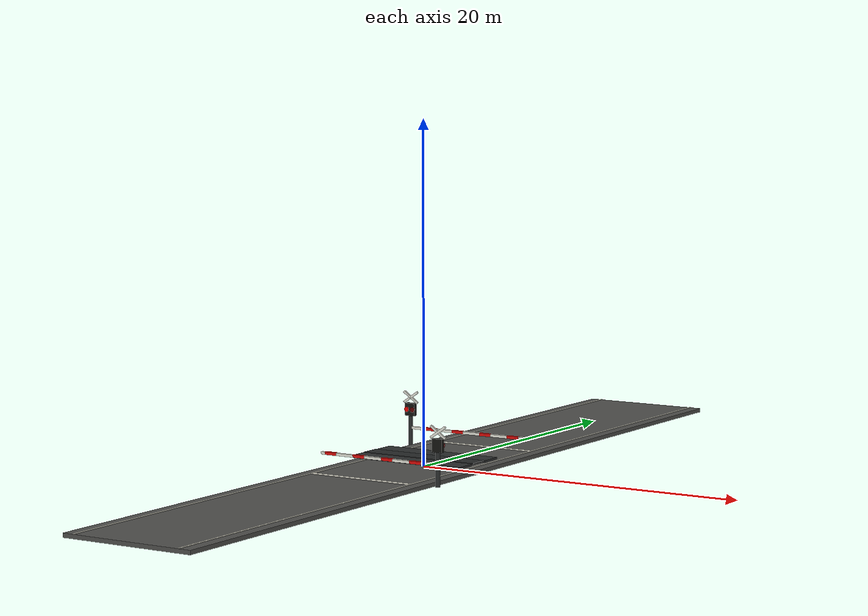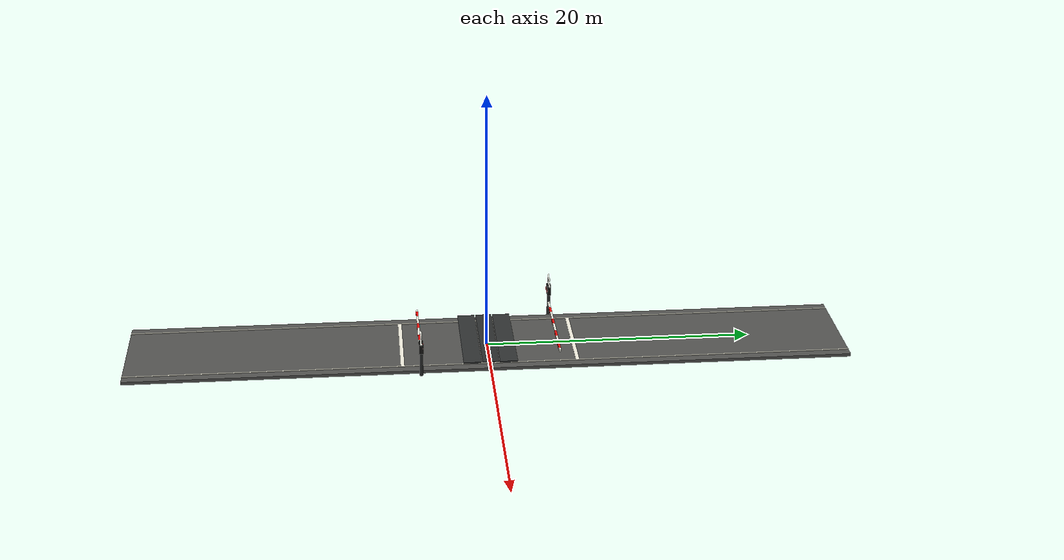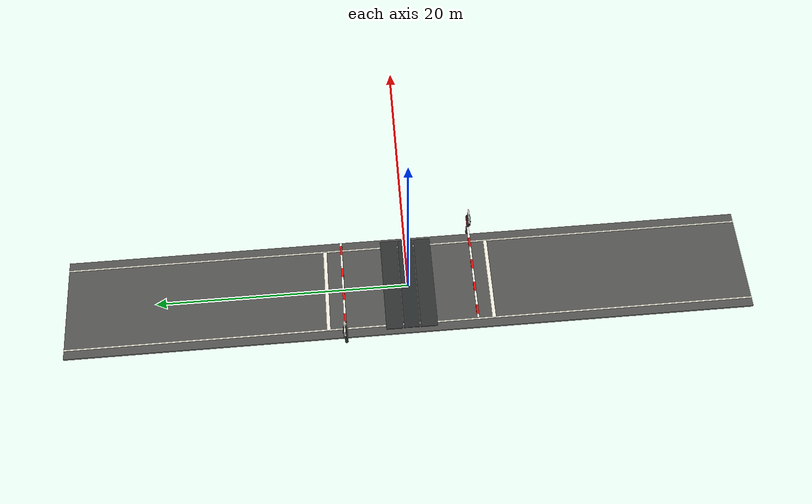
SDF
<?xml version="1.0"?>
<sdf version="1.9">
  <model name="level_crossing">
    <static>true</static>
    <plugin filename="gz-sim-label-system" name="gz::sim::systems::Label"><label>70</label></plugin>
    <link name="crossing">
      <collision name="road_collision"><pose>0 0 0.12 0 0 0</pose><geometry><box><size>8.0 54 0.24</size></box></geometry></collision>
      <visual name="road"><pose>0 0 0.12 0 0 0</pose><geometry><box><size>8.0 54 0.24</size></box></geometry><material><diffuse>0.32 0.32 0.31 1</diffuse><pbr><metal><albedo_map>model://level_crossing/materials/textures/asphalt_albedo.png</albedo_map><roughness>0.97</roughness><metalness>0</metalness></metal></pbr></material></visual>
      <visual name="deck_center"><pose>0 0 0.565 0 0 0</pose><geometry><box><size>7.4 1.22 0.085</size></box></geometry><material><diffuse>0.16 0.17 0.17 1</diffuse><pbr><metal><roughness>0.90</roughness><metalness>0</metalness></metal></pbr></material></visual>
      <visual name="deck_north"><pose>0 1.35 0.53 0 0 0</pose><geometry><box><size>7.4 1.32 0.12</size></box></geometry><material><diffuse>0.18 0.19 0.19 1</diffuse></material></visual>
      <visual name="deck_south"><pose>0 -1.35 0.53 0 0 0</pose><geometry><box><size>7.4 1.32 0.12</size></box></geometry><material><diffuse>0.18 0.19 0.19 1</diffuse></material></visual>
      <visual name="lane_left"><pose>-3.30 0 0.255 0 0 0</pose><geometry><box><size>0.10 54 0.025</size></box></geometry><material><diffuse>0.92 0.91 0.84 1</diffuse></material></visual>
      <visual name="lane_right"><pose>3.30 0 0.255 0 0 0</pose><geometry><box><size>0.10 54 0.025</size></box></geometry><material><diffuse>0.92 0.91 0.84 1</diffuse></material></visual>
      <visual name="stop_n"><pose>0 6.5 0.258 0 0 0</pose><geometry><box><size>6.6 0.28 0.026</size></box></geometry><material><diffuse>0.93 0.92 0.86 1</diffuse></material></visual>
      <visual name="stop_s"><pose>0 -6.5 0.258 0 0 0</pose><geometry><box><size>6.6 0.28 0.026</size></box></geometry><material><diffuse>0.93 0.92 0.86 1</diffuse></material></visual>
      <visual name="post_n"><pose>-4.25 5.15 1.15 0 0 0</pose><geometry><cylinder><radius>0.13</radius><length>2.30</length></cylinder></geometry><material><diffuse>0.16 0.17 0.17 1</diffuse></material></visual>
      <visual name="post_s"><pose>4.25 -5.15 1.15 0 0 0</pose><geometry><cylinder><radius>0.13</radius><length>2.30</length></cylinder></geometry><material><diffuse>0.16 0.17 0.17 1</diffuse></material></visual>
      <visual name="signal_head_n"><pose>-4.25 5.15 2.32 0 0 0</pose><geometry><box><size>0.62 0.30 0.76</size></box></geometry><material><diffuse>0.08 0.08 0.07 1</diffuse></material></visual>
      <visual name="signal_head_s"><pose>4.25 -5.15 2.32 0 0 0</pose><geometry><box><size>0.62 0.30 0.76</size></box></geometry><material><diffuse>0.08 0.08 0.07 1</diffuse></material></visual>
      <visual name="red_n1"><pose>-4.45 4.99 2.32 1.570796 0 0</pose><geometry><cylinder><radius>0.15</radius><length>0.04</length></cylinder></geometry><material><emissive>0.95 0.02 0.01 1</emissive><diffuse>0.95 0.02 0.01 1</diffuse></material></visual>
      <visual name="red_n2"><pose>-4.05 4.99 2.32 1.570796 0 0</pose><geometry><cylinder><radius>0.15</radius><length>0.04</length></cylinder></geometry><material><diffuse>0.38 0.01 0.01 1</diffuse></material></visual>
      <visual name="red_s1"><pose>4.05 -4.99 2.32 1.570796 0 0</pose><geometry><cylinder><radius>0.15</radius><length>0.04</length></cylinder></geometry><material><emissive>0.95 0.02 0.01 1</emissive><diffuse>0.95 0.02 0.01 1</diffuse></material></visual>
      <visual name="red_s2"><pose>4.45 -4.99 2.32 1.570796 0 0</pose><geometry><cylinder><radius>0.15</radius><length>0.04</length></cylinder></geometry><material><diffuse>0.38 0.01 0.01 1</diffuse></material></visual>
      <visual name="bar_n_white"><pose>-0.3 5.15 1.22 0 0 0</pose><geometry><box><size>7.7 0.15 0.15</size></box></geometry><material><diffuse>0.94 0.94 0.89 1</diffuse></material></visual>
      <visual name="bar_s_white"><pose>0.3 -5.15 1.22 0 0 0</pose><geometry><box><size>7.7 0.15 0.15</size></box></geometry><material><diffuse>0.94 0.94 0.89 1</diffuse></material></visual>
      <visual name="bar_n_red1"><pose>-2.8 5.145 1.225 0 0 0</pose><geometry><box><size>0.75 0.17 0.17</size></box></geometry><material><diffuse>0.90 0.04 0.03 1</diffuse></material></visual>
      <visual name="bar_n_red2"><pose>-0.9 5.145 1.225 0 0 0</pose><geometry><box><size>0.75 0.17 0.17</size></box></geometry><material><diffuse>0.90 0.04 0.03 1</diffuse></material></visual>
      <visual name="bar_n_red3"><pose>1.0 5.145 1.225 0 0 0</pose><geometry><box><size>0.75 0.17 0.17</size></box></geometry><material><diffuse>0.90 0.04 0.03 1</diffuse></material></visual>
      <visual name="bar_n_red4"><pose>2.9 5.145 1.225 0 0 0</pose><geometry><box><size>0.75 0.17 0.17</size></box></geometry><material><diffuse>0.90 0.04 0.03 1</diffuse></material></visual>
      <visual name="bar_s_red1"><pose>-2.9 -5.145 1.225 0 0 0</pose><geometry><box><size>0.75 0.17 0.17</size></box></geometry><material><diffuse>0.90 0.04 0.03 1</diffuse></material></visual>
      <visual name="bar_s_red2"><pose>-1.0 -5.145 1.225 0 0 0</pose><geometry><box><size>0.75 0.17 0.17</size></box></geometry><material><diffuse>0.90 0.04 0.03 1</diffuse></material></visual>
      <visual name="bar_s_red3"><pose>0.9 -5.145 1.225 0 0 0</pose><geometry><box><size>0.75 0.17 0.17</size></box></geometry><material><diffuse>0.90 0.04 0.03 1</diffuse></material></visual>
      <visual name="bar_s_red4"><pose>2.8 -5.145 1.225 0 0 0</pose><geometry><box><size>0.75 0.17 0.17</size></box></geometry><material><diffuse>0.90 0.04 0.03 1</diffuse></material></visual>
      <visual name="crossbuck_n_a"><pose>-4.25 5.15 3.05 0 0.60 0</pose><geometry><box><size>1.15 0.10 0.13</size></box></geometry><material><diffuse>0.94 0.94 0.90 1</diffuse></material></visual>
      <visual name="crossbuck_n_b"><pose>-4.25 5.15 3.05 0 -0.60 0</pose><geometry><box><size>1.15 0.10 0.13</size></box></geometry><material><diffuse>0.94 0.94 0.90 1</diffuse></material></visual>
      <visual name="crossbuck_s_a"><pose>4.25 -5.15 3.05 0 0.60 0</pose><geometry><box><size>1.15 0.10 0.13</size></box></geometry><material><diffuse>0.94 0.94 0.90 1</diffuse></material></visual>
      <visual name="crossbuck_s_b"><pose>4.25 -5.15 3.05 0 -0.60 0</pose><geometry><box><size>1.15 0.10 0.13</size></box></geometry><material><diffuse>0.94 0.94 0.90 1</diffuse></material></visual>
    </link>
  </model>
</sdf>
